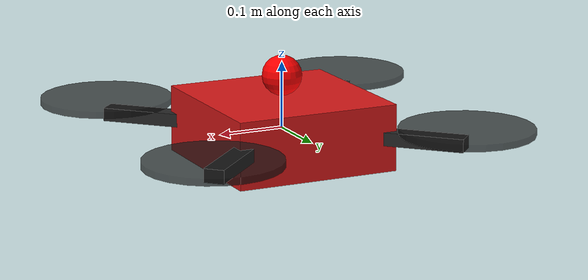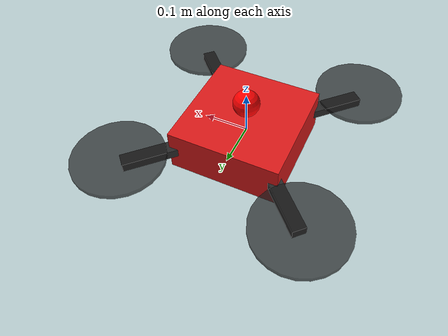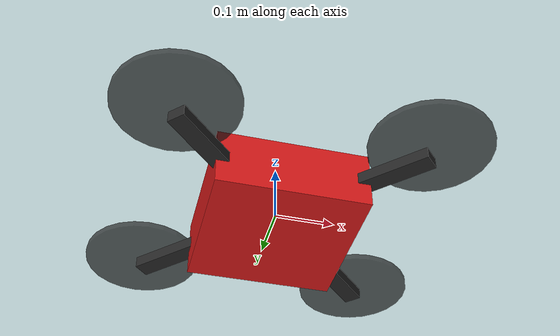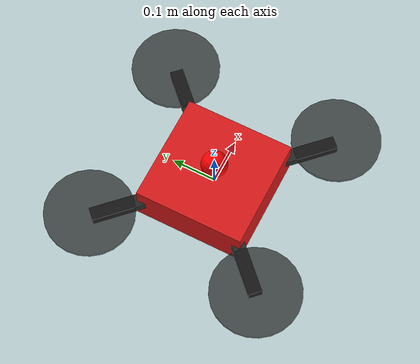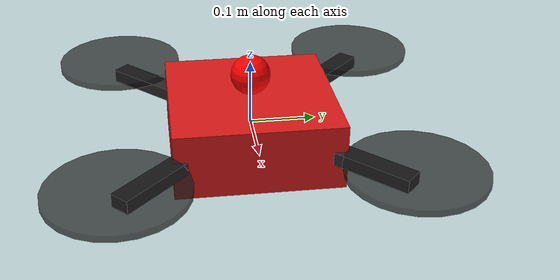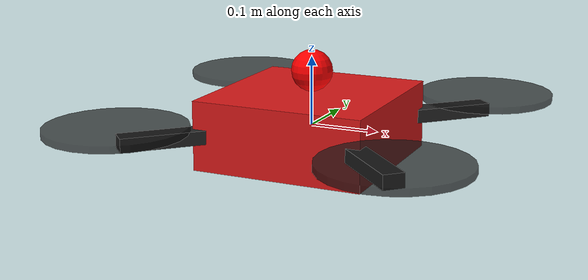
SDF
<?xml version="1.0" encoding="UTF-8"?>
<sdf version="1.9">
  <model name="enemy_drone">
    <pose>0 0 0 0 0 0</pose>

    <!-- ── Main body ─────────────────────────────────────────────────── -->
    <link name="base_link">
      <!-- Kinematic velocity-controlled body (see plugin below); gravity
           would fight the velocity plugin between command ticks and drag
           the drone to z=0 whenever cmd_vel stops arriving. -->
      <gravity>false</gravity>
      <!-- See interceptor_drone/model.sdf for the rationale behind the
           angular damping. Enemies are slower so they tumbled less, but
           same plugin behaviour, same fix. -->
      <velocity_decay>
        <linear>0</linear>
        <angular>10</angular>
      </velocity_decay>
      <inertial>
        <mass>1.5</mass>
        <inertia>
          <ixx>0.0195</ixx><ixy>0</ixy><ixz>0</ixz>
          <iyy>0.0195</iyy><iyz>0</iyz>
          <izz>0.0325</izz>
        </inertia>
      </inertial>

      <collision name="body_collision">
        <geometry><box><size>0.5 0.5 0.2</size></box></geometry>
      </collision>

      <!-- Central body (red) -->
      <visual name="body_visual">
        <geometry><box><size>0.25 0.25 0.1</size></box></geometry>
        <material>
          <ambient>0.85 0.1 0.1 1</ambient>
          <diffuse>0.85 0.1 0.1 1</diffuse>
          <specular>0.2 0.05 0.05 1</specular>
        </material>
      </visual>

      <!-- Arm NE -->
      <visual name="arm_ne">
        <pose>0.1 0.1 0 0 0 0.785</pose>
        <geometry><box><size>0.28 0.03 0.02</size></box></geometry>
        <material><ambient>0.15 0.15 0.15 1</ambient><diffuse>0.15 0.15 0.15 1</diffuse></material>
      </visual>
      <!-- Arm NW -->
      <visual name="arm_nw">
        <pose>-0.1 0.1 0 0 0 -0.785</pose>
        <geometry><box><size>0.28 0.03 0.02</size></box></geometry>
        <material><ambient>0.15 0.15 0.15 1</ambient><diffuse>0.15 0.15 0.15 1</diffuse></material>
      </visual>
      <!-- Arm SE -->
      <visual name="arm_se">
        <pose>0.1 -0.1 0 0 0 -0.785</pose>
        <geometry><box><size>0.28 0.03 0.02</size></box></geometry>
        <material><ambient>0.15 0.15 0.15 1</ambient><diffuse>0.15 0.15 0.15 1</diffuse></material>
      </visual>
      <!-- Arm SW -->
      <visual name="arm_sw">
        <pose>-0.1 -0.1 0 0 0 0.785</pose>
        <geometry><box><size>0.28 0.03 0.02</size></box></geometry>
        <material><ambient>0.15 0.15 0.15 1</ambient><diffuse>0.15 0.15 0.15 1</diffuse></material>
      </visual>

      <!-- Rotors (visual discs only — no physics) -->
      <visual name="rotor_0_vis">
        <pose>0.2 0.2 0.02 0 0 0</pose>
        <geometry><cylinder><radius>0.1</radius><length>0.01</length></cylinder></geometry>
        <material><ambient>0.1 0.1 0.1 0.7</ambient><diffuse>0.1 0.1 0.1 0.7</diffuse></material>
      </visual>
      <visual name="rotor_1_vis">
        <pose>-0.2 0.2 0.02 0 0 0</pose>
        <geometry><cylinder><radius>0.1</radius><length>0.01</length></cylinder></geometry>
        <material><ambient>0.1 0.1 0.1 0.7</ambient><diffuse>0.1 0.1 0.1 0.7</diffuse></material>
      </visual>
      <visual name="rotor_2_vis">
        <pose>0.2 -0.2 0.02 0 0 0</pose>
        <geometry><cylinder><radius>0.1</radius><length>0.01</length></cylinder></geometry>
        <material><ambient>0.1 0.1 0.1 0.7</ambient><diffuse>0.1 0.1 0.1 0.7</diffuse></material>
      </visual>
      <visual name="rotor_3_vis">
        <pose>-0.2 -0.2 0.02 0 0 0</pose>
        <geometry><cylinder><radius>0.1</radius><length>0.01</length></cylinder></geometry>
        <material><ambient>0.1 0.1 0.1 0.7</ambient><diffuse>0.1 0.1 0.1 0.7</diffuse></material>
      </visual>

      <!-- Red warning light on top -->
      <visual name="top_light">
        <pose>0 0 0.08 0 0 0</pose>
        <geometry><sphere><radius>0.03</radius></sphere></geometry>
        <material>
          <ambient>1 0 0 1</ambient><diffuse>1 0 0 1</diffuse>
          <emissive>0.8 0 0 1</emissive>
        </material>
      </visual>
    </link>

    <!-- ── Velocity control plugin ───────────────────────────────────── -->
    <!-- Accepts gz.msgs.Twist on /model/{name}/cmd_vel                  -->
    <plugin filename="gz-sim-velocity-control-system"
      name="gz::sim::systems::VelocityControl">
    </plugin>

    <!-- ── Odometry publisher (3D — default is 2D, which zeroes pose.z) ── -->
    <plugin filename="gz-sim-odometry-publisher-system"
      name="gz::sim::systems::OdometryPublisher">
      <odom_frame>world</odom_frame>
      <robot_base_frame>enemy_drone</robot_base_frame>
      <odom_publish_frequency>20</odom_publish_frequency>
      <dimensions>3</dimensions>
    </plugin>

  </model>
</sdf>
